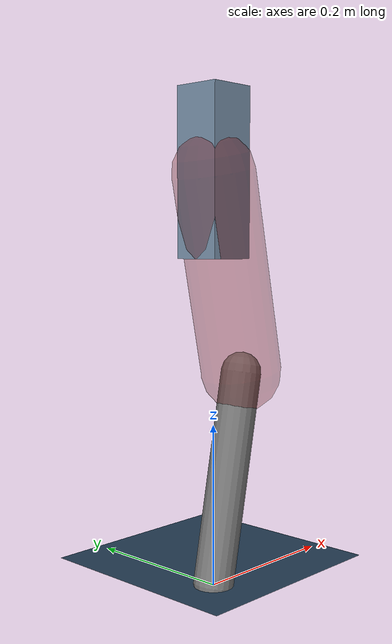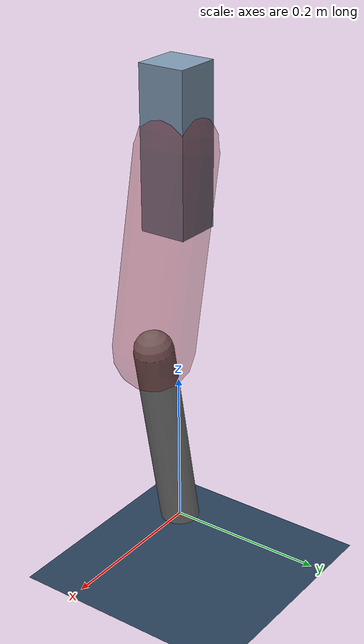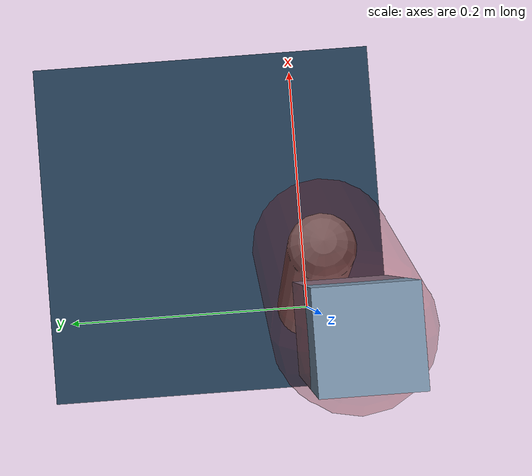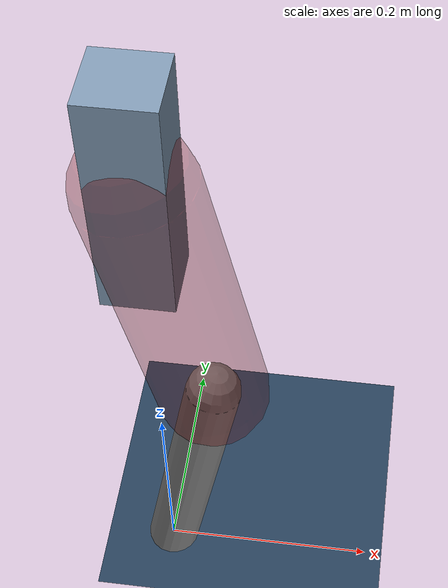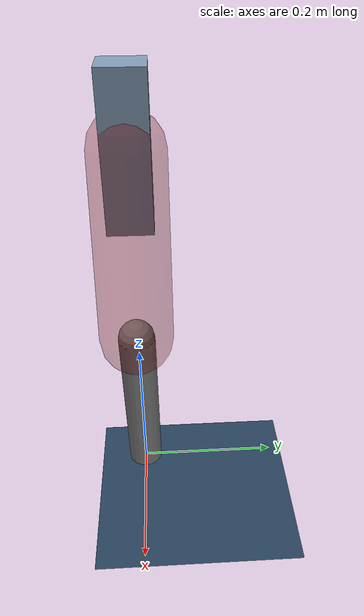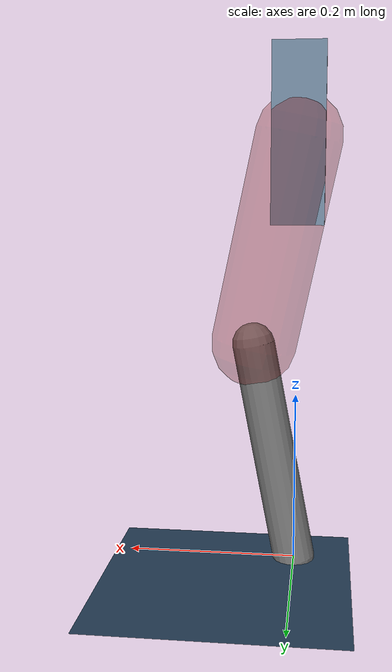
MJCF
<mujoco model="Hopper2D">
	<compiler inertiafromgeom="true" angle="radian" />
	<option timestep="0.001" integrator="implicit" cone="elliptic" solver="Newton" tolerance="1e-10" />

	<default>
		<geom contype="1" conaffinity="1" condim="3" friction="2 0.005 0.0001" solref="0.005 1" />
		<joint limited="true" damping="0.1" />
	</default>

	<asset>
		<texture name="skybox" type="skybox" builtin="gradient" rgb1=".4 .6 .8" rgb2="0 0 0" width="800" height="800" />
		<texture name="grid" type="2d" builtin="checker" rgb1=".1 .2 .3" rgb2=".2 .3 .4" width="300" height="300" mark="edge" markrgb=".2 .3 .4" />
		<material name="ground" texture="grid" texrepeat="1 1" texuniform="true" reflectance="0.1" />
		<material name="leg" rgba="0.5 0.6 0.7 1" />
	</asset>

	<worldbody>

		<geom name="floor" type="plane" size="5 5 0.25" material="ground" />

		<light directional="false" diffuse="0.8 0.8 0.8" specular="0.3 0.3 0.3" pos="0 0 2" dir="0 0 -1" />
		<light mode="targetbodycom" target="base" directional="false" diffuse="0.8 0.8 0.8" specular="0.3 0.3 0.3" pos="0 0 2" dir="0 0 -1" />

		<camera name="fixed" pos="0 -2 1" xyaxes="1 0 0 0 0 1" />
		<camera name="tracking" mode="trackcom" pos="0 -3 1" />

		<body name="root" pos="0 0 0.5010633824409811">
			<joint name="slide_x" type="slide" axis="1 0 0" range="-100 100" />
			<joint name="slide_z" type="slide" axis="0 0 1" range="0 10" />

			<body name="base" pos="0 0 0">
				<geom name="torso" type="box" size="0.03 0.03 0.1" mass="4.622999999999999" material="leg" />

				<body name="link1" pos="0 0 0" euler="0 1.3645522699614507 0">
					<joint type="hinge" axis="0 -1 0" pos="0 0 0" name="hinge1" limited="true" range="-3.14 3.14" stiffness="0" damping="0.1" />
					<geom name="thigh" type="capsule" fromto="0 0 0 0.24543489974852806 0 0" size="0.05" rgba="0.5 0 0 0.3" mass="0.8445872493713201" />

					<body name="link2" pos="0.24543489974852806 0 0" euler="0 0.39660859789286423 0">
						<joint type="hinge" axis="0 -1 0" pos="0 0 0" name="hinge2" limited="true" range="-3.14 3.14" stiffness="0" damping="0.1" />
						<geom name="shank" type="capsule" fromto="0 0 0 0.2656284826924531 0 0" size="0.025" mass="0.45540278615396246" />

					</body>
				</body>
			</body>
		</body>
	</worldbody>

	<actuator>
		<motor name="torque1" joint="hinge1" ctrlrange="-302.8529184574447 302.8529184574447" ctrllimited="true" gear="1" />
		<motor name="torque2" joint="hinge2" ctrlrange="-129.09976545695247 129.09976545695247" ctrllimited="true" gear="1" />
	</actuator>
</mujoco>
